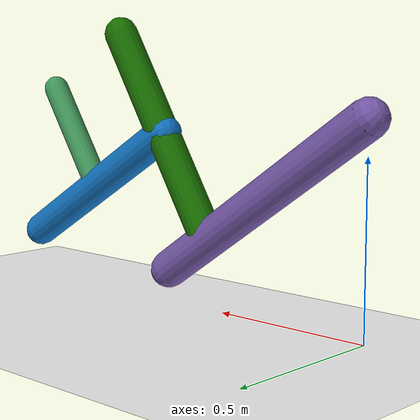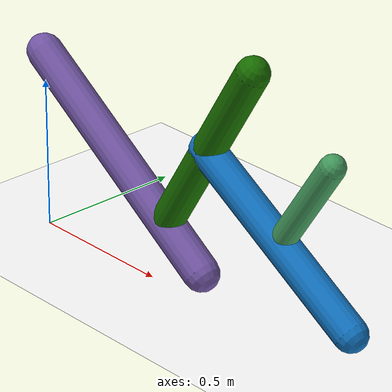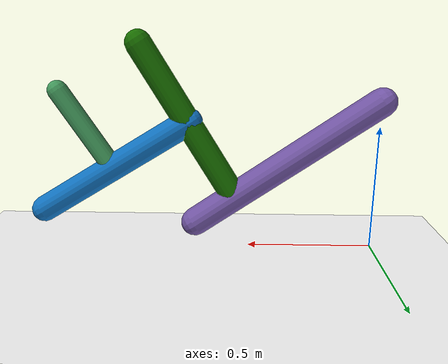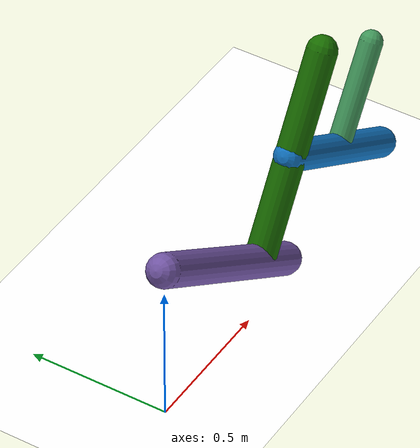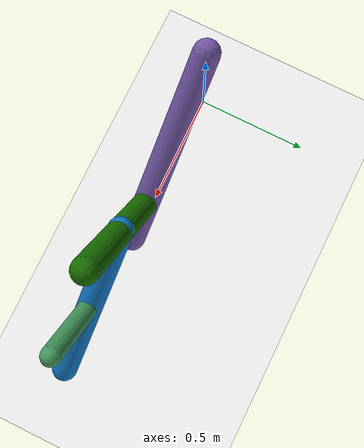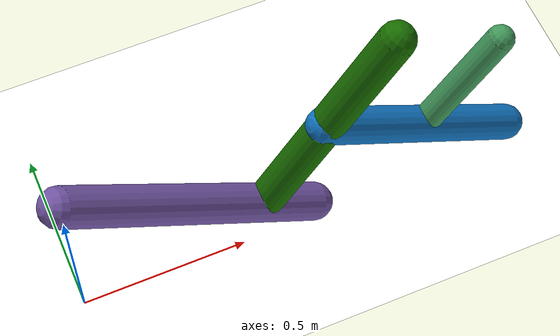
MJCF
<mujoco model="morphology">
  <option timestep="0.01"/>
  <default>
    <default class="/"/>
  </default>
  <asset>
    <texture name="texplane" type="2d" builtin="checker" rgb1="0.1 0.2 0.3" rgb2="0.2 0.3 0.4" width="300" height="300"/>
    <material name="MatPlane" class="/" texture="texplane" texrepeat="20 20" specular="1" shininess="1" reflectance="0.5"/>
  </asset>
  <worldbody>
    <light name="//unnamed_light_0" class="/" directional="true" pos="0 0 1.5" dir="0 0 -1.3" cutoff="1e+02" exponent="1" diffuse="1 1 1" specular="0.1 0.1 0.1"/>
    <geom name="ground" class="/" type="plane" size="15 15 0.5" material="MatPlane" rgba="1 1 1 1"/>
    <body name="body" pos="0 0 0.6">
      <geom name="geom0" class="/" type="capsule" contype="1" conaffinity="1" condim="3" size="0.057" rgba="0.45 0.34 0.65 1" friction="0.4 0.1 0.1" fromto="0 0 0 0.72 0 -0.5"/>
      <body name="body1" pos="0.56 0 -0.39">
        <geom name="geom1" class="/" type="capsule" contype="1" conaffinity="1" condim="3" size="0.052" rgba="0.096 0.43 0.0018 1" friction="0.4 0.1 0.1" fromto="0 0 0 0.37 0 0.61"/>
        <body name="body2" pos="0.18 0 0.31">
          <geom name="geom2" class="/" type="capsule" contype="1" conaffinity="1" condim="3" size="0.053" rgba="0.064 0.45 0.75 1" friction="0.4 0.1 0.1" fromto="0 0 0 0.6 0 -0.37"/>
          <body name="body3" pos="0.31 0 -0.19">
            <geom name="geom3" class="/" type="capsule" contype="1" conaffinity="1" condim="3" size="0.04" rgba="0.26 0.6 0.36 1" friction="0.4 0.1 0.1" fromto="0 0 0 0.2 0 0.31"/>
            <joint name="joint3" class="/" type="hinge" axis="0 1 0" limited="true" stiffness="20" range="-37 37" armature="0.1" damping="2"/>
          </body>
          <joint name="joint2" class="/" type="hinge" axis="0 1 0" limited="true" stiffness="20" range="-69 69" armature="0.1" damping="2"/>
        </body>
        <joint name="joint1" class="/" type="hinge" axis="0 1 0" limited="true" stiffness="20" range="-61 61" armature="0.1" damping="2"/>
      </body>
      <joint name="rootx" class="/" type="slide" axis="1 0 0" limited="false" stiffness="0" armature="0" damping="0"/>
      <joint name="rootz" class="/" type="slide" axis="0 0 1" limited="false" stiffness="0" armature="0" damping="0"/>
      <joint name="rooty" class="/" type="hinge" axis="0 1 0" limited="false" stiffness="0" armature="0" damping="0"/>
    </body>
  </worldbody>
  <actuator>
    <motor name="motor3" class="/" ctrllimited="true" ctrlrange="-1 1" gear="1.9e+02" joint="joint3"/>
    <motor name="motor2" class="/" ctrllimited="true" ctrlrange="-1 1" gear="1.3e+02" joint="joint2"/>
    <motor name="motor1" class="/" ctrllimited="true" ctrlrange="-1 1" gear="1.1e+02" joint="joint1"/>
  </actuator>
  <sensor>
    <subtreelinvel name="velocity" body="body"/>
  </sensor>
</mujoco>
